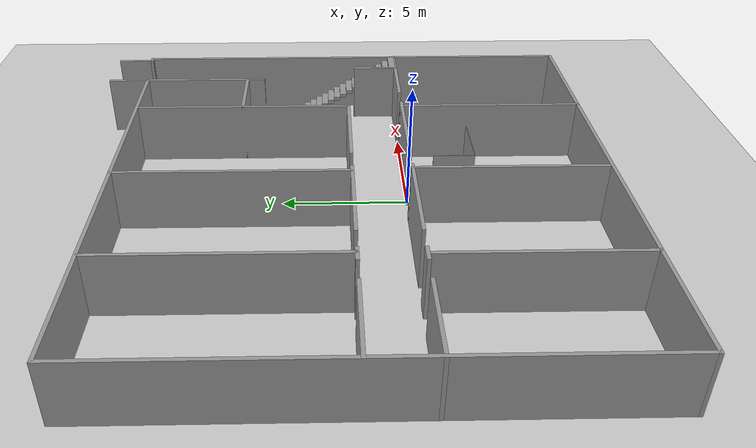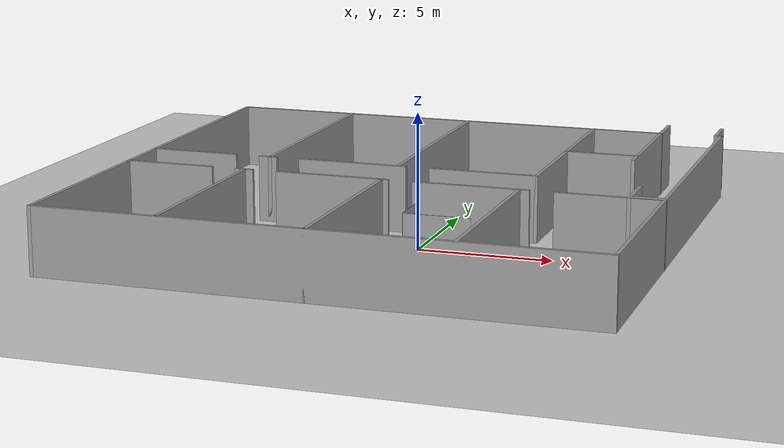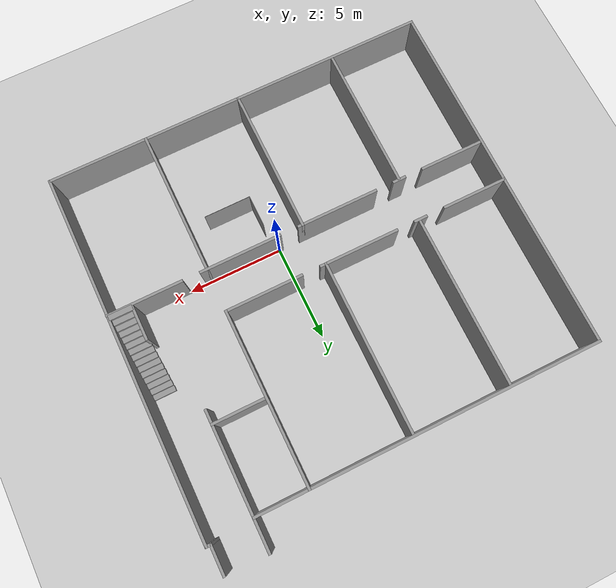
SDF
<sdf version="1.4">
 <world name="default">
  <model name="ground_plane">
   <static>1</static>
   <link name="link">
    <collision name="collision">
     <geometry><plane><normal>0 0 1</normal><size>100 100</size></plane></geometry>
     <surface><friction><ode><mu>100</mu><mu2>50</mu2></ode></friction></surface>
    </collision>
    <visual name="visual">
     <cast_shadows>0</cast_shadows>
     <geometry><plane><normal>0 0 1</normal><size>100 100</size></plane></geometry>
     <material>
      <script><uri>file://media/materials/scripts/gazebo.material</uri><name>Gazebo/Grey</name></script>
     </material>
    </visual>
    <velocity_decay><linear>0</linear><angular>0</angular></velocity_decay>
   </link>
  </model>
  <model name="teknopark">
   <link name="Stairs_0">
    <visual name="Stairs_0_Visual_0">
     <pose>8.265 4.12932 0.083333 0 -0 0</pose>
     <geometry><box><size>1.23 0.284782 0.166668</size></box></geometry>
     <material>
      <script><uri>file://media/materials/scripts/gazebo.material</uri><name>Gazebo/Grey</name></script>
     </material>
    </visual>
    <collision name="Stairs_0_Collision_0">
     <geometry><box><size>1.23 0.284782 0.166668</size></box></geometry>
     <pose>8.265 4.12932 0.083333 0 -0 0</pose>
    </collision>
    <visual name="Stairs_0_Visual_1">
     <pose>8.265 3.84454 0.25 0 -0 0</pose>
     <geometry><box><size>1.23 0.284782 0.166668</size></box></geometry>
     <material>
      <script><uri>file://media/materials/scripts/gazebo.material</uri><name>Gazebo/Grey</name></script>
     </material>
    </visual>
    <collision name="Stairs_0_Collision_1">
     <geometry><box><size>1.23 0.284782 0.166668</size></box></geometry>
     <pose>8.265 3.84454 0.25 0 -0 0</pose>
    </collision>
    <visual name="Stairs_0_Visual_2">
     <pose>8.265 3.55976 0.416667 0 -0 0</pose>
     <geometry><box><size>1.23 0.284782 0.166668</size></box></geometry>
     <material>
      <script><uri>file://media/materials/scripts/gazebo.material</uri><name>Gazebo/Grey</name></script>
     </material>
    </visual>
    <collision name="Stairs_0_Collision_2">
     <geometry><box><size>1.23 0.284782 0.166668</size></box></geometry>
     <pose>8.265 3.55976 0.416667 0 -0 0</pose>
    </collision>
    <visual name="Stairs_0_Visual_3">
     <pose>8.265 3.27498 0.583333 0 -0 0</pose>
     <geometry><box><size>1.23 0.284782 0.166668</size></box></geometry>
     <material>
      <script><uri>file://media/materials/scripts/gazebo.material</uri><name>Gazebo/Grey</name></script>
     </material>
    </visual>
    <collision name="Stairs_0_Collision_3">
     <geometry><box><size>1.23 0.284782 0.166668</size></box></geometry>
     <pose>8.265 3.27498 0.583333 0 -0 0</pose>
    </collision>
    <visual name="Stairs_0_Visual_4">
     <pose>8.265 2.9902 0.75 0 -0 0</pose>
     <geometry><box><size>1.23 0.284782 0.166668</size></box></geometry>
     <material>
      <script><uri>file://media/materials/scripts/gazebo.material</uri><name>Gazebo/Grey</name></script>
     </material>
    </visual>
    <collision name="Stairs_0_Collision_4">
     <geometry><box><size>1.23 0.284782 0.166668</size></box></geometry>
     <pose>8.265 2.9902 0.75 0 -0 0</pose>
    </collision>
    <visual name="Stairs_0_Visual_5">
     <pose>8.265 2.70542 0.916667 0 -0 0</pose>
     <geometry><box><size>1.23 0.284782 0.166668</size></box></geometry>
     <material>
      <script><uri>file://media/materials/scripts/gazebo.material</uri><name>Gazebo/Grey</name></script>
     </material>
    </visual>
    <collision name="Stairs_0_Collision_5">
     <geometry><box><size>1.23 0.284782 0.166668</size></box></geometry>
     <pose>8.265 2.70542 0.916667 0 -0 0</pose>
    </collision>
    <visual name="Stairs_0_Visual_6">
     <pose>8.265 2.42064 1.08333 0 -0 0</pose>
     <geometry><box><size>1.23 0.284782 0.166668</size></box></geometry>
     <material>
      <script><uri>file://media/materials/scripts/gazebo.material</uri><name>Gazebo/Grey</name></script>
     </material>
    </visual>
    <collision name="Stairs_0_Collision_6">
     <geometry><box><size>1.23 0.284782 0.166668</size></box></geometry>
     <pose>8.265 2.42064 1.08333 0 -0 0</pose>
    </collision>
    <visual name="Stairs_0_Visual_7">
     <pose>8.265 2.13586 1.25 0 -0 0</pose>
     <geometry><box><size>1.23 0.284782 0.166668</size></box></geometry>
     <material>
      <script><uri>file://media/materials/scripts/gazebo.material</uri><name>Gazebo/Grey</name></script>
     </material>
    </visual>
    <collision name="Stairs_0_Collision_7">
     <geometry><box><size>1.23 0.284782 0.166668</size></box></geometry>
     <pose>8.265 2.13586 1.25 0 -0 0</pose>
    </collision>
    <visual name="Stairs_0_Visual_8">
     <pose>8.265 1.85108 1.41667 0 -0 0</pose>
     <geometry><box><size>1.23 0.284782 0.166668</size></box></geometry>
     <material>
      <script><uri>file://media/materials/scripts/gazebo.material</uri><name>Gazebo/Grey</name></script>
     </material>
    </visual>
    <collision name="Stairs_0_Collision_8">
     <geometry><box><size>1.23 0.284782 0.166668</size></box></geometry>
     <pose>8.265 1.85108 1.41667 0 -0 0</pose>
    </collision>
    <visual name="Stairs_0_Visual_9">
     <pose>8.265 1.56629 1.58333 0 -0 0</pose>
     <geometry><box><size>1.23 0.284782 0.166668</size></box></geometry>
     <material>
      <script><uri>file://media/materials/scripts/gazebo.material</uri><name>Gazebo/Grey</name></script>
     </material>
    </visual>
    <collision name="Stairs_0_Collision_9">
     <geometry><box><size>1.23 0.284782 0.166668</size></box></geometry>
     <pose>8.265 1.56629 1.58333 0 -0 0</pose>
    </collision>
    <visual name="Stairs_0_Visual_10">
     <pose>8.265 1.28151 1.75 0 -0 0</pose>
     <geometry><box><size>1.23 0.284782 0.166668</size></box></geometry>
     <material>
      <script><uri>file://media/materials/scripts/gazebo.material</uri><name>Gazebo/Grey</name></script>
     </material>
    </visual>
    <collision name="Stairs_0_Collision_10">
     <geometry><box><size>1.23 0.284782 0.166668</size></box></geometry>
     <pose>8.265 1.28151 1.75 0 -0 0</pose>
    </collision>
    <visual name="Stairs_0_Visual_11">
     <pose>8.265 0.996734 1.91667 0 -0 0</pose>
     <geometry><box><size>1.23 0.284782 0.166668</size></box></geometry>
     <material>
      <script><uri>file://media/materials/scripts/gazebo.material</uri><name>Gazebo/Grey</name></script>
     </material>
    </visual>
    <collision name="Stairs_0_Collision_11">
     <geometry><box><size>1.23 0.284782 0.166668</size></box></geometry>
     <pose>8.265 0.996734 1.91667 0 -0 0</pose>
    </collision>
    <visual name="Stairs_0_Visual_12">
     <pose>8.265 0.711953 2.08333 0 -0 0</pose>
     <geometry><box><size>1.23 0.284782 0.166668</size></box></geometry>
     <material>
      <script><uri>file://media/materials/scripts/gazebo.material</uri><name>Gazebo/Grey</name></script>
     </material>
    </visual>
    <collision name="Stairs_0_Collision_12">
     <geometry><box><size>1.23 0.284782 0.166668</size></box></geometry>
     <pose>8.265 0.711953 2.08333 0 -0 0</pose>
    </collision>
    <visual name="Stairs_0_Visual_13">
     <pose>8.265 0.427173 2.25 0 -0 0</pose>
     <geometry><box><size>1.23 0.284782 0.166668</size></box></geometry>
     <material>
      <script><uri>file://media/materials/scripts/gazebo.material</uri><name>Gazebo/Grey</name></script>
     </material>
    </visual>
    <collision name="Stairs_0_Collision_13">
     <geometry><box><size>1.23 0.284782 0.166668</size></box></geometry>
     <pose>8.265 0.427173 2.25 0 -0 0</pose>
    </collision>
    <visual name="Stairs_0_Visual_14">
     <pose>8.265 0.142392 2.41667 0 -0 0</pose>
     <geometry><box><size>1.23 0.284782 0.166668</size></box></geometry>
     <material>
      <script><uri>file://media/materials/scripts/gazebo.material</uri><name>Gazebo/Grey</name></script>
     </material>
    </visual>
    <collision name="Stairs_0_Collision_14">
     <geometry><box><size>1.23 0.284782 0.166668</size></box></geometry>
     <pose>8.265 0.142392 2.41667 0 -0 0</pose>
    </collision>
    <velocity_decay><linear>0</linear><angular>0</angular></velocity_decay>
   </link>
   <link name="Wall_0">
    <collision name="Wall_0_Collision">
     <geometry><box><size>1.57 0.14 2.5</size></box></geometry>
     <pose>0 0 1.25 0 -0 0</pose>
    </collision>
    <visual name="Wall_0_Visual">
     <pose>0 0 1.25 0 -0 0</pose>
     <geometry><box><size>1.57 0.14 2.5</size></box></geometry>
     <material>
      <script><uri>file://media/materials/scripts/gazebo.material</uri><name>Gazebo/Grey</name></script>
     </material>
    </visual>
    <velocity_decay><linear>0</linear><angular>0</angular></velocity_decay>
    <pose>8.67 12.175 0 0 -0 1.5708</pose>
   </link>
   <link name="Wall_10">
    <collision name="Wall_10_Collision">
     <geometry><box><size>3.48 0.14 2.5</size></box></geometry>
     <pose>0 0 1.25 0 -0 0</pose>
    </collision>
    <visual name="Wall_10_Visual">
     <pose>0 0 1.25 0 -0 0</pose>
     <geometry><box><size>3.48 0.14 2.5</size></box></geometry>
     <material>
      <script><uri>file://media/materials/scripts/gazebo.material</uri><name>Gazebo/Grey</name></script>
     </material>
    </visual>
    <velocity_decay><linear>0</linear><angular>0</angular></velocity_decay>
    <pose>-9.69 0 0 0 -0 0</pose>
   </link>
   <link name="Wall_12">
    <collision name="Wall_12_Collision">
     <geometry><box><size>0.72 0.14 2.5</size></box></geometry>
     <pose>0 0 1.25 0 -0 0</pose>
    </collision>
    <visual name="Wall_12_Visual">
     <pose>0 0 1.25 0 -0 0</pose>
     <geometry><box><size>0.72 0.14 2.5</size></box></geometry>
     <material>
      <script><uri>file://media/materials/scripts/gazebo.material</uri><name>Gazebo/Grey</name></script>
     </material>
    </visual>
    <velocity_decay><linear>0</linear><angular>0</angular></velocity_decay>
    <pose>-6.69 0 0 0 -0 0</pose>
   </link>
   <link name="Wall_16">
    <collision name="Wall_16_Collision">
     <geometry><box><size>4.33 0.14 2.5</size></box></geometry>
     <pose>0 0 1.25 0 -0 0</pose>
    </collision>
    <visual name="Wall_16_Visual">
     <pose>0 0 1.25 0 -0 0</pose>
     <geometry><box><size>4.33 0.14 2.5</size></box></geometry>
     <material>
      <script><uri>file://media/materials/scripts/gazebo.material</uri><name>Gazebo/Grey</name></script>
     </material>
    </visual>
    <velocity_decay><linear>0</linear><angular>0</angular></velocity_decay>
    <pose>-3.265 0 0 0 -0 0</pose>
   </link>
   <link name="Wall_18">
    <collision name="Wall_18_Collision">
     <geometry><box><size>7.561 0.14 2.5</size></box></geometry>
     <pose>0 0 1.25 0 -0 0</pose>
    </collision>
    <visual name="Wall_18_Visual">
     <pose>0 0 1.25 0 -0 0</pose>
     <geometry><box><size>7.561 0.14 2.5</size></box></geometry>
     <material>
      <script><uri>file://media/materials/scripts/gazebo.material</uri><name>Gazebo/Grey</name></script>
     </material>
    </visual>
    <velocity_decay><linear>0</linear><angular>0</angular></velocity_decay>
    <pose>-6.687 -3.7695 0 0 0 -1.5708</pose>
   </link>
   <link name="Wall_2">
    <collision name="Wall_2_Collision">
     <geometry><box><size>0.35 0.14 2.5</size></box></geometry>
     <pose>0 0 1.25 0 -0 0</pose>
    </collision>
    <visual name="Wall_2_Visual">
     <pose>0 0 1.25 0 -0 0</pose>
     <geometry><box><size>0.35 0.14 2.5</size></box></geometry>
     <material>
      <script><uri>file://media/materials/scripts/gazebo.material</uri><name>Gazebo/Grey</name></script>
     </material>
    </visual>
    <velocity_decay><linear>0</linear><angular>0</angular></velocity_decay>
    <pose>8.775 11.46 0 0 -0 0</pose>
   </link>
   <link name="Wall_22">
    <collision name="Wall_22_Collision">
     <geometry><box><size>4.32 0.14 2.5</size></box></geometry>
     <pose>0 0 1.25 0 -0 0</pose>
    </collision>
    <visual name="Wall_22_Visual">
     <pose>0 0 1.25 0 -0 0</pose>
     <geometry><box><size>4.32 0.14 2.5</size></box></geometry>
     <material>
      <script><uri>file://media/materials/scripts/gazebo.material</uri><name>Gazebo/Grey</name></script>
     </material>
    </visual>
    <velocity_decay><linear>0</linear><angular>0</angular></velocity_decay>
    <pose>1.96 0 0 0 -0 0</pose>
   </link>
   <link name="Wall_24">
    <collision name="Wall_24_Collision">
     <geometry><box><size>3.971 0.14 2.5</size></box></geometry>
     <pose>0 0 1.25 0 -0 0</pose>
    </collision>
    <visual name="Wall_24_Visual">
     <pose>0 0 1.25 0 -0 0</pose>
     <geometry><box><size>3.971 0.14 2.5</size></box></geometry>
     <material>
      <script><uri>file://media/materials/scripts/gazebo.material</uri><name>Gazebo/Grey</name></script>
     </material>
    </visual>
    <velocity_decay><linear>0</linear><angular>0</angular></velocity_decay>
    <pose>6.9785 0 0 0 -0 0</pose>
   </link>
   <link name="Wall_26">
    <collision name="Wall_26_Collision">
     <geometry><box><size>1.97 0.14 2.5</size></box></geometry>
     <pose>0 0 1.25 0 -0 0</pose>
    </collision>
    <visual name="Wall_26_Visual">
     <pose>0 0 1.25 0 -0 0</pose>
     <geometry><box><size>1.97 0.14 2.5</size></box></geometry>
     <material>
      <script><uri>file://media/materials/scripts/gazebo.material</uri><name>Gazebo/Grey</name></script>
     </material>
    </visual>
    <velocity_decay><linear>0</linear><angular>0</angular></velocity_decay>
    <pose>7.65 0.915 0 0 -0 1.5708</pose>
   </link>
   <link name="Wall_28">
    <collision name="Wall_28_Collision">
     <geometry><box><size>7.67 0.14 2.5</size></box></geometry>
     <pose>0 0 1.25 0 -0 0</pose>
    </collision>
    <visual name="Wall_28_Visual">
     <pose>0 0 1.25 0 -0 0</pose>
     <geometry><box><size>7.67 0.14 2.5</size></box></geometry>
     <material>
      <script><uri>file://media/materials/scripts/gazebo.material</uri><name>Gazebo/Grey</name></script>
     </material>
    </visual>
    <velocity_decay><linear>0</linear><angular>0</angular></velocity_decay>
    <pose>-1.37 -3.765 0 0 0 -1.5708</pose>
   </link>
   <link name="Wall_30">
    <collision name="Wall_30_Collision">
     <geometry><box><size>7.67 0.14 2.5</size></box></geometry>
     <pose>0 0 1.25 0 -0 0</pose>
    </collision>
    <visual name="Wall_30_Visual">
     <pose>0 0 1.25 0 -0 0</pose>
     <geometry><box><size>7.67 0.14 2.5</size></box></geometry>
     <material>
      <script><uri>file://media/materials/scripts/gazebo.material</uri><name>Gazebo/Grey</name></script>
     </material>
    </visual>
    <velocity_decay><linear>0</linear><angular>0</angular></velocity_decay>
    <pose>3.73 -3.765 0 0 0 -1.5708</pose>
   </link>
   <link name="Wall_32">
    <collision name="Wall_32_Collision">
     <geometry><box><size>18 0.14 2.5</size></box></geometry>
     <pose>0 0 1.25 0 -0 0</pose>
    </collision>
    <visual name="Wall_32_Visual">
     <pose>0 0 1.25 0 -0 0</pose>
     <geometry><box><size>18 0.14 2.5</size></box></geometry>
     <material>
      <script><uri>file://media/materials/scripts/gazebo.material</uri><name>Gazebo/Grey</name></script>
     </material>
    </visual>
    <velocity_decay><linear>0</linear><angular>0</angular></velocity_decay>
    <pose>-2.43 11.28 0 0 -0 0</pose>
   </link>
   <link name="Wall_34">
    <collision name="Wall_34_Collision">
     <geometry><box><size>3.467 0.14 2.5</size></box></geometry>
     <pose>0 0 1.25 0 -0 0</pose>
    </collision>
    <visual name="Wall_34_Visual">
     <pose>0 0 1.25 0 -0 0</pose>
     <geometry><box><size>3.467 0.14 2.5</size></box></geometry>
     <material>
      <script><uri>file://media/materials/scripts/gazebo.material</uri><name>Gazebo/Grey</name></script>
     </material>
    </visual>
    <velocity_decay><linear>0</linear><angular>0</angular></velocity_decay>
    <pose>-9.6965 2.273 0 0 -0 0</pose>
   </link>
   <link name="Wall_38">
    <collision name="Wall_38_Collision">
     <geometry><box><size>0.72 0.14 2.5</size></box></geometry>
     <pose>0 0 1.25 0 -0 0</pose>
    </collision>
    <visual name="Wall_38_Visual">
     <pose>0 0 1.25 0 -0 0</pose>
     <geometry><box><size>0.72 0.14 2.5</size></box></geometry>
     <material>
      <script><uri>file://media/materials/scripts/gazebo.material</uri><name>Gazebo/Grey</name></script>
     </material>
    </visual>
    <velocity_decay><linear>0</linear><angular>0</angular></velocity_decay>
    <pose>-6.68 2.273 0 0 -0 0</pose>
   </link>
   <link name="Wall_4">
    <collision name="Wall_4_Collision">
     <geometry><box><size>19.13 0.14 2.5</size></box></geometry>
     <pose>0 0 1.25 0 -0 0</pose>
    </collision>
    <visual name="Wall_4_Visual">
     <pose>0 0 1.25 0 -0 0</pose>
     <geometry><box><size>19.13 0.14 2.5</size></box></geometry>
     <material>
      <script><uri>file://media/materials/scripts/gazebo.material</uri><name>Gazebo/Grey</name></script>
     </material>
    </visual>
    <velocity_decay><linear>0</linear><angular>0</angular></velocity_decay>
    <pose>8.88 1.965 0 0 0 -1.5708</pose>
   </link>
   <link name="Wall_40">
    <collision name="Wall_40_Collision">
     <geometry><box><size>4.23 0.14 2.5</size></box></geometry>
     <pose>0 0 1.25 0 -0 0</pose>
    </collision>
    <visual name="Wall_40_Visual">
     <pose>0 0 1.25 0 -0 0</pose>
     <geometry><box><size>4.23 0.14 2.5</size></box></geometry>
     <material>
      <script><uri>file://media/materials/scripts/gazebo.material</uri><name>Gazebo/Grey</name></script>
     </material>
    </visual>
    <velocity_decay><linear>0</linear><angular>0</angular></velocity_decay>
    <pose>-3.305 2.273 0 0 -0 0</pose>
   </link>
   <link name="Wall_42">
    <collision name="Wall_42_Collision">
     <geometry><box><size>4.12 0.14 2.5</size></box></geometry>
     <pose>0 0 1.25 0 -0 0</pose>
    </collision>
    <visual name="Wall_42_Visual">
     <pose>0 0 1.25 0 -0 0</pose>
     <geometry><box><size>4.12 0.14 2.5</size></box></geometry>
     <material>
      <script><uri>file://media/materials/scripts/gazebo.material</uri><name>Gazebo/Grey</name></script>
     </material>
    </visual>
    <velocity_decay><linear>0</linear><angular>0</angular></velocity_decay>
    <pose>1.77 2.273 0 0 -0 0</pose>
   </link>
   <link name="Wall_44">
    <collision name="Wall_44_Collision">
     <geometry><box><size>9.147 0.14 2.5</size></box></geometry>
     <pose>0 0 1.25 0 -0 0</pose>
    </collision>
    <visual name="Wall_44_Visual">
     <pose>0 0 1.25 0 -0 0</pose>
     <geometry><box><size>9.147 0.14 2.5</size></box></geometry>
     <material>
      <script><uri>file://media/materials/scripts/gazebo.material</uri><name>Gazebo/Grey</name></script>
     </material>
    </visual>
    <velocity_decay><linear>0</linear><angular>0</angular></velocity_decay>
    <pose>3.76 6.7765 0 0 -0 1.5708</pose>
   </link>
   <link name="Wall_46">
    <collision name="Wall_46_Collision">
     <geometry><box><size>2.88 0.14 2.5</size></box></geometry>
     <pose>0 0 1.25 0 -0 0</pose>
    </collision>
    <visual name="Wall_46_Visual">
     <pose>0 0 1.25 0 -0 0</pose>
     <geometry><box><size>2.88 0.14 2.5</size></box></geometry>
     <material>
      <script><uri>file://media/materials/scripts/gazebo.material</uri><name>Gazebo/Grey</name></script>
     </material>
    </visual>
    <velocity_decay><linear>0</linear><angular>0</angular></velocity_decay>
    <pose>5.13 6.77 0 0 -0 0</pose>
   </link>
   <link name="Wall_48">
    <collision name="Wall_48_Collision">
     <geometry><box><size>7.003 0.14 2.5</size></box></geometry>
     <pose>0 0 1.25 0 -0 0</pose>
    </collision>
    <visual name="Wall_48_Visual">
     <pose>0 0 1.25 0 -0 0</pose>
     <geometry><box><size>7.003 0.14 2.5</size></box></geometry>
     <material>
      <script><uri>file://media/materials/scripts/gazebo.material</uri><name>Gazebo/Grey</name></script>
     </material>
    </visual>
    <velocity_decay><linear>0</linear><angular>0</angular></velocity_decay>
    <pose>6.5 9.5015 0 0 -0 1.5708</pose>
   </link>
   <link name="Wall_50">
    <collision name="Wall_50_Collision">
     <geometry><box><size>9.147 0.14 2.5</size></box></geometry>
     <pose>0 0 1.25 0 -0 0</pose>
    </collision>
    <visual name="Wall_50_Visual">
     <pose>0 0 1.25 0 -0 0</pose>
     <geometry><box><size>9.147 0.14 2.5</size></box></geometry>
     <material>
      <script><uri>file://media/materials/scripts/gazebo.material</uri><name>Gazebo/Grey</name></script>
     </material>
    </visual>
    <velocity_decay><linear>0</linear><angular>0</angular></velocity_decay>
    <pose>-6.6 6.7765 0 0 -0 1.5708</pose>
   </link>
   <link name="Wall_52">
    <collision name="Wall_52_Collision">
     <geometry><box><size>9.147 0.14 2.5</size></box></geometry>
     <pose>0 0 1.25 0 -0 0</pose>
    </collision>
    <visual name="Wall_52_Visual">
     <pose>0 0 1.25 0 -0 0</pose>
     <geometry><box><size>9.147 0.14 2.5</size></box></geometry>
     <material>
      <script><uri>file://media/materials/scripts/gazebo.material</uri><name>Gazebo/Grey</name></script>
     </material>
    </visual>
    <velocity_decay><linear>0</linear><angular>0</angular></velocity_decay>
    <pose>-1.52 6.7765 0 0 -0 1.5708</pose>
   </link>
   <link name="Wall_6">
    <collision name="Wall_6_Collision">
     <geometry><box><size>20.38 0.14 2.5</size></box></geometry>
     <pose>0 0 1.25 0 -0 0</pose>
    </collision>
    <visual name="Wall_6_Visual">
     <pose>0 0 1.25 0 -0 0</pose>
     <geometry><box><size>20.38 0.14 2.5</size></box></geometry>
     <material>
      <script><uri>file://media/materials/scripts/gazebo.material</uri><name>Gazebo/Grey</name></script>
     </material>
    </visual>
    <velocity_decay><linear>0</linear><angular>0</angular></velocity_decay>
    <pose>-1.24 -7.53 0 0 -0 3.14159</pose>
   </link>
   <link name="Wall_8">
    <collision name="Wall_8_Collision">
     <geometry><box><size>18.95 0.14 2.5</size></box></geometry>
     <pose>0 0 1.25 0 -0 0</pose>
    </collision>
    <visual name="Wall_8_Visual">
     <pose>0 0 1.25 0 -0 0</pose>
     <geometry><box><size>18.95 0.14 2.5</size></box></geometry>
     <material>
      <script><uri>file://media/materials/scripts/gazebo.material</uri><name>Gazebo/Grey</name></script>
     </material>
    </visual>
    <velocity_decay><linear>0</linear><angular>0</angular></velocity_decay>
    <pose>-11.36 1.875 0 0 -0 1.5708</pose>
   </link>
   <static>1</static>
  </model>
  <model name="teknopark_ik2">
   <link name="Wall_3">
    <collision name="Wall_3_Collision">
     <geometry><box><size>1.66 0.02 2</size></box></geometry>
     <pose>0 0 1 0 -0 0</pose>
    </collision>
    <visual name="Wall_3_Visual">
     <pose>0 0 1 0 -0 0</pose>
     <geometry><box><size>1.66 0.02 2</size></box></geometry>
     <material>
      <script><uri>file://media/materials/scripts/gazebo.material</uri><name>Gazebo/Grey</name></script>
     </material>
    </visual>
    <velocity_decay><linear>0</linear><angular>0</angular></velocity_decay>
    <pose>0.312 -1.818 0 0 -0 1.5708</pose>
   </link>
   <link name="Wall_9">
    <collision name="Wall_9_Collision">
     <geometry><box><size>2.45 0.02 2</size></box></geometry>
     <pose>0 0 1 0 -0 0</pose>
    </collision>
    <visual name="Wall_9_Visual">
     <pose>0 0 1 0 -0 0</pose>
     <geometry><box><size>2.45 0.02 2</size></box></geometry>
     <material>
      <script><uri>file://media/materials/scripts/gazebo.material</uri><name>Gazebo/Grey</name></script>
     </material>
    </visual>
    <velocity_decay><linear>0</linear><angular>0</angular></velocity_decay>
    <pose>1.528 -2.637 0 0 -0 0</pose>
   </link>
   <static>1</static>
  </model>
  <model name="teknopart_v_1_2">
   <static>1</static>
   <link name="__default__"><velocity_decay><linear>0</linear><angular>0</angular></velocity_decay></link>
  </model>
 </world>
</sdf>
